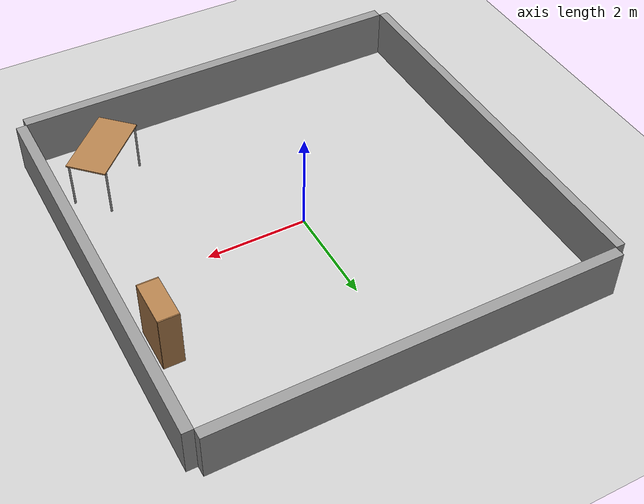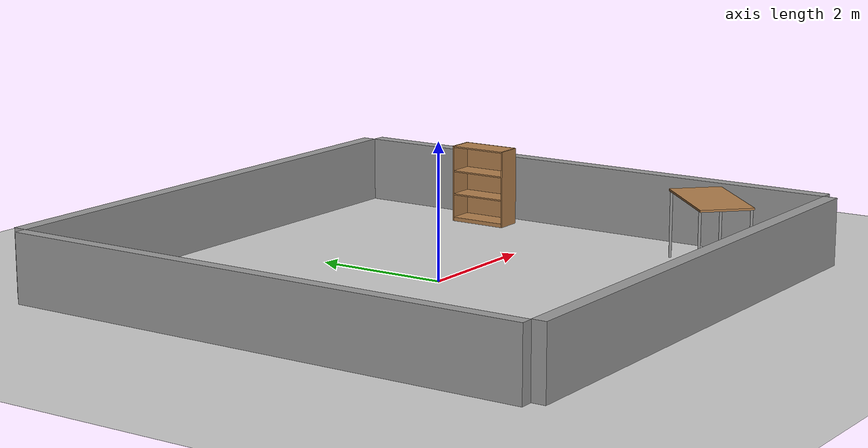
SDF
<sdf version="1.7">
 <world name="default">
  <light name="sun" type="directional">
   <pose>0 0 10 0 -0 0</pose>
   <diffuse>0.8 0.8 0.8 1</diffuse>
   <specular>0.2 0.2 0.2 1</specular>
   <attenuation>
    <range>1000</range>
    <constant>0.9</constant>
    <linear>0.01</linear>
    <quadratic>0.001</quadratic>
   </attenuation>
   <direction>-0.5 0.1 -0.9</direction>
   <spot><inner_angle>0</inner_angle><outer_angle>0</outer_angle><falloff>0</falloff></spot>
  </light>
  <model name="ground_plane">
   <static>1</static>
   <link name="link">
    <collision name="collision">
     <geometry><plane><normal>0 0 1</normal><size>100 100</size></plane></geometry>
     <surface><friction><ode><mu>100</mu><mu2>50</mu2></ode></friction></surface>
    </collision>
    <visual name="visual">
     <cast_shadows>0</cast_shadows>
     <geometry><plane><normal>0 0 1</normal><size>100 100</size></plane></geometry>
     <material>
      <script><uri>file://media/materials/scripts/gazebo.material</uri><name>Gazebo/Grey</name></script>
     </material>
    </visual>
    <kinematic>1</kinematic>
   </link>
  </model>
  <gravity>0 0 -9.8</gravity>
  <magnetic_field>6e-06 2.3e-05 -4.2e-05</magnetic_field>
  <atmosphere type="adiabatic"/>
  <physics type="ode">
   <max_step_size>0.001</max_step_size>
   <real_time_factor>1</real_time_factor>
   <real_time_update_rate>1000</real_time_update_rate>
  </physics>
  <scene><ambient>0.4 0.4 0.4 1</ambient><background>0.7 0.7 0.7 1</background><shadows>0</shadows></scene>
  <spherical_coordinates>
   <surface_model>EARTH_WGS84</surface_model>
   <latitude_deg>0</latitude_deg>
   <longitude_deg>0</longitude_deg>
   <elevation>0</elevation>
   <heading_deg>0</heading_deg>
  </spherical_coordinates>
  <model name="wall_01">
   <pose>0 -4.1 0.5 0 -0 0</pose>
   <link name="link_w1">
    <inertial>
     <mass>1</mass>
     <inertia>
      <ixx>0.166667</ixx>
      <ixy>0</ixy>
      <ixz>0</ixz>
      <iyy>0.166667</iyy>
      <iyz>0</iyz>
      <izz>0.166667</izz>
     </inertia>
    </inertial>
    <collision name="collision"><geometry><box><size>8 0.21 1</size></box></geometry></collision>
    <visual name="visual">
     <geometry><box><size>8 0.21 1</size></box></geometry>
     <material>
      <script><name>Gazebo/Grey</name><uri>file://media/materials/scripts/gazebo.material</uri></script>
     </material>
    </visual>
    <kinematic>1</kinematic>
   </link>
  </model>
  <model name="wall_02">
   <pose>4.1 0 0.5 0 -0 1.57</pose>
   <link name="link_w2">
    <inertial>
     <mass>1</mass>
     <inertia>
      <ixx>0.166667</ixx>
      <ixy>0</ixy>
      <ixz>0</ixz>
      <iyy>0.166667</iyy>
      <iyz>0</iyz>
      <izz>0.166667</izz>
     </inertia>
    </inertial>
    <collision name="collision"><geometry><box><size>8 0.21 1</size></box></geometry></collision>
    <visual name="visual">
     <geometry><box><size>8 0.21 1</size></box></geometry>
     <material>
      <script><name>Gazebo/Grey</name><uri>file://media/materials/scripts/gazebo.material</uri></script>
     </material>
    </visual>
    <kinematic>1</kinematic>
   </link>
  </model>
  <model name="wall_03">
   <pose>-4.1 0 0.5 0 -0 1.57</pose>
   <link name="link_w3">
    <inertial>
     <mass>1</mass>
     <inertia>
      <ixx>0.166667</ixx>
      <ixy>0</ixy>
      <ixz>0</ixz>
      <iyy>0.166667</iyy>
      <iyz>0</iyz>
      <izz>0.166667</izz>
     </inertia>
    </inertial>
    <collision name="collision"><geometry><box><size>8 0.21 1</size></box></geometry></collision>
    <visual name="visual">
     <geometry><box><size>8.01045 0.183486 1</size></box></geometry>
     <material>
      <script><name>Gazebo/Grey</name><uri>file://media/materials/scripts/gazebo.material</uri></script>
     </material>
    </visual>
    <kinematic>1</kinematic>
   </link>
  </model>
  <model name="wall_04">
   <pose>0 4.1 0.5 0 -0 0</pose>
   <link name="link_w4">
    <inertial>
     <mass>1</mass>
     <inertia>
      <ixx>0.166667</ixx>
      <ixy>0</ixy>
      <ixz>0</ixz>
      <iyy>0.166667</iyy>
      <iyz>0</iyz>
      <izz>0.166667</izz>
     </inertia>
    </inertial>
    <collision name="collision"><geometry><box><size>8 0.21 1</size></box></geometry></collision>
    <visual name="visual">
     <geometry><box><size>8 0.21 1</size></box></geometry>
     <material>
      <script><name>Gazebo/Grey</name><uri>file://media/materials/scripts/gazebo.material</uri></script>
     </material>
    </visual>
    <kinematic>1</kinematic>
   </link>
  </model>
  <model name="Bookshelf_clone">
   <static>1</static>
   <link name="link_b4">
    <inertial><mass>1</mass></inertial>
    <collision name="back">
     <pose>0 0.005 0.6 0 -0 0</pose>
     <geometry><box><size>0.9 0.01 1.2</size></box></geometry>
    </collision>
    <visual name="visual1">
     <pose>0 0.005 0.6 0 -0 0</pose>
     <geometry><box><size>0.9 0.01 1.2</size></box></geometry>
     <material>
      <diffuse>1 1 1 1</diffuse>
      <script><uri>file://media/materials/scripts/gazebo.material</uri><name>Gazebo/Wood</name></script>
      <pbr>
       <metal>
        <albedo_map>https://fuel.ignitionrobotics.org/1.0/openrobotics/models/bookshelf/3/files/bookshelf_diffuse.jpg</albedo_map>
       </metal>
      </pbr>
     </material>
    </visual>
    <collision name="left_side">
     <pose>0.45 -0.195 0.6 0 -0 0</pose>
     <geometry><box><size>0.02 0.4 1.2</size></box></geometry>
    </collision>
    <visual name="visual2">
     <pose>0.45 -0.195 0.6 0 -0 0</pose>
     <geometry><box><size>0.02 0.4 1.2</size></box></geometry>
     <material>
      <diffuse>1 1 1 1</diffuse>
      <script><uri>file://media/materials/scripts/gazebo.material</uri><name>Gazebo/Wood</name></script>
      <pbr>
       <metal>
        <albedo_map>https://fuel.ignitionrobotics.org/1.0/openrobotics/models/bookshelf/3/files/bookshelf_diffuse.jpg</albedo_map>
       </metal>
      </pbr>
     </material>
    </visual>
    <collision name="right_side">
     <pose>-0.45 -0.195 0.6 0 -0 0</pose>
     <geometry><box><size>0.02 0.4 1.2</size></box></geometry>
    </collision>
    <visual name="visual3">
     <pose>-0.45 -0.195 0.6 0 -0 0</pose>
     <geometry><box><size>0.02 0.4 1.2</size></box></geometry>
     <material>
      <diffuse>1 1 1 1</diffuse>
      <script><uri>file://media/materials/scripts/gazebo.material</uri><name>Gazebo/Wood</name></script>
      <pbr>
       <metal>
        <albedo_map>https://fuel.ignitionrobotics.org/1.0/openrobotics/models/bookshelf/3/files/bookshelf_diffuse.jpg</albedo_map>
       </metal>
      </pbr>
     </material>
    </visual>
    <collision name="bottom">
     <pose>0 -0.195 0.03 0 -0 0</pose>
     <geometry><box><size>0.88 0.4 0.06</size></box></geometry>
    </collision>
    <visual name="visual4">
     <pose>0 -0.195 0.03 0 -0 0</pose>
     <geometry><box><size>0.88 0.4 0.06</size></box></geometry>
     <material>
      <diffuse>1 1 1 1</diffuse>
      <script><uri>file://media/materials/scripts/gazebo.material</uri><name>Gazebo/Wood</name></script>
      <pbr>
       <metal>
        <albedo_map>https://fuel.ignitionrobotics.org/1.0/openrobotics/models/bookshelf/3/files/bookshelf_diffuse.jpg</albedo_map>
       </metal>
      </pbr>
     </material>
    </visual>
    <collision name="top">
     <pose>0 -0.195 1.19 0 -0 0</pose>
     <geometry><box><size>0.88 0.4 0.02</size></box></geometry>
    </collision>
    <visual name="visual5">
     <pose>0 -0.195 1.19 0 -0 0</pose>
     <geometry><box><size>0.88 0.4 0.02</size></box></geometry>
     <material>
      <diffuse>1 1 1 1</diffuse>
      <script><uri>file://media/materials/scripts/gazebo.material</uri><name>Gazebo/Wood</name></script>
      <pbr>
       <metal>
        <albedo_map>https://fuel.ignitionrobotics.org/1.0/openrobotics/models/bookshelf/3/files/bookshelf_diffuse.jpg</albedo_map>
       </metal>
      </pbr>
     </material>
    </visual>
    <collision name="low_shelf">
     <pose>0 -0.195 0.43 0 -0 0</pose>
     <geometry><box><size>0.88 0.4 0.02</size></box></geometry>
    </collision>
    <visual name="visual6">
     <pose>0 -0.195 0.43 0 -0 0</pose>
     <geometry><box><size>0.88 0.4 0.02</size></box></geometry>
     <material>
      <diffuse>1 1 1 1</diffuse>
      <script><uri>file://media/materials/scripts/gazebo.material</uri><name>Gazebo/Wood</name></script>
      <pbr>
       <metal>
        <albedo_map>https://fuel.ignitionrobotics.org/1.0/openrobotics/models/bookshelf/3/files/bookshelf_diffuse.jpg</albedo_map>
       </metal>
      </pbr>
     </material>
    </visual>
    <collision name="high_shelf">
     <pose>0 -0.195 0.8 0 -0 0</pose>
     <geometry><box><size>0.88 0.4 0.02</size></box></geometry>
    </collision>
    <visual name="visual7">
     <pose>0 -0.195 0.8 0 -0 0</pose>
     <geometry><box><size>0.88 0.4 0.02</size></box></geometry>
     <material>
      <diffuse>1 1 1 1</diffuse>
      <script><uri>file://media/materials/scripts/gazebo.material</uri><name>Gazebo/Wood</name></script>
      <pbr>
       <metal>
        <albedo_map>https://fuel.ignitionrobotics.org/1.0/openrobotics/models/bookshelf/3/files/bookshelf_diffuse.jpg</albedo_map>
       </metal>
      </pbr>
     </material>
    </visual>
    <kinematic>1</kinematic>
   </link>
   <pose>3.7271 1.54027 0 0 0 -1.5708</pose>
  </model>
  <model name="Table_clone">
   <static>1</static>
   <link name="link_t4">
    <collision name="surface">
     <pose>0 0 1 0 -0 0</pose>
     <geometry><box><size>1.5 0.8 0.03</size></box></geometry>
     <surface><friction><ode><mu>0.6</mu><mu2>0.6</mu2></ode></friction></surface>
    </collision>
    <visual name="visual1">
     <pose>0 0 1 0 -0 0</pose>
     <geometry><box><size>1.5 0.8 0.03</size></box></geometry>
     <material>
      <diffuse>1 1 1 1</diffuse>
      <script><uri>file://media/materials/scripts/gazebo.material</uri><name>Gazebo/Wood</name></script>
      <pbr>
       <metal>
        <albedo_map>https://fuel.ignitionrobotics.org/1.0/openrobotics/models/table/3/files/Table_Diffuse.jpg</albedo_map>
       </metal>
      </pbr>
     </material>
    </visual>
    <collision name="front_left_leg">
     <pose>0.68 0.38 0.5 0 -0 0</pose>
     <geometry><cylinder><radius>0.02</radius><length>1</length></cylinder></geometry>
    </collision>
    <visual name="front_left_leg">
     <pose>0.68 0.38 0.5 0 -0 0</pose>
     <geometry><cylinder><radius>0.02</radius><length>1</length></cylinder></geometry>
     <material>
      <diffuse>0.5 0.5 0.5 1</diffuse>
      <script><uri>file://media/materials/scripts/gazebo.material</uri><name>Gazebo/Grey</name></script>
     </material>
    </visual>
    <collision name="front_right_leg">
     <pose>0.68 -0.38 0.5 0 -0 0</pose>
     <geometry><cylinder><radius>0.02</radius><length>1</length></cylinder></geometry>
    </collision>
    <visual name="front_right_leg">
     <pose>0.68 -0.38 0.5 0 -0 0</pose>
     <geometry><cylinder><radius>0.02</radius><length>1</length></cylinder></geometry>
     <material>
      <diffuse>0.5 0.5 0.5 1</diffuse>
      <script><uri>file://media/materials/scripts/gazebo.material</uri><name>Gazebo/Grey</name></script>
     </material>
    </visual>
    <collision name="back_right_leg">
     <pose>-0.68 -0.38 0.5 0 -0 0</pose>
     <geometry><cylinder><radius>0.02</radius><length>1</length></cylinder></geometry>
    </collision>
    <visual name="back_right_leg">
     <pose>-0.68 -0.38 0.5 0 -0 0</pose>
     <geometry><cylinder><radius>0.02</radius><length>1</length></cylinder></geometry>
     <material>
      <diffuse>0.5 0.5 0.5 1</diffuse>
      <script><uri>file://media/materials/scripts/gazebo.material</uri><name>Gazebo/Grey</name></script>
     </material>
    </visual>
    <collision name="back_left_leg">
     <pose>-0.68 0.38 0.5 0 -0 0</pose>
     <geometry><cylinder><radius>0.02</radius><length>1</length></cylinder></geometry>
    </collision>
    <visual name="back_left_leg">
     <pose>-0.68 0.38 0.5 0 -0 0</pose>
     <geometry><cylinder><radius>0.02</radius><length>1</length></cylinder></geometry>
     <material>
      <diffuse>0.5 0.5 0.5 1</diffuse>
      <script><uri>file://media/materials/scripts/gazebo.material</uri><name>Gazebo/Grey</name></script>
     </material>
    </visual>
    <kinematic>1</kinematic>
   </link>
   <pose>2.90906 -2.74117 0 0 -0 0.785398</pose>
  </model>
 </world>
</sdf>
